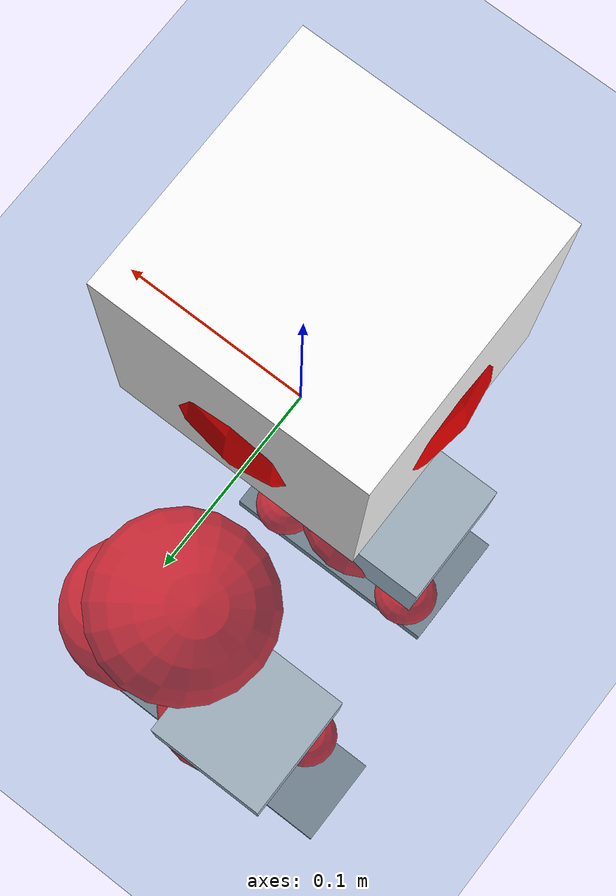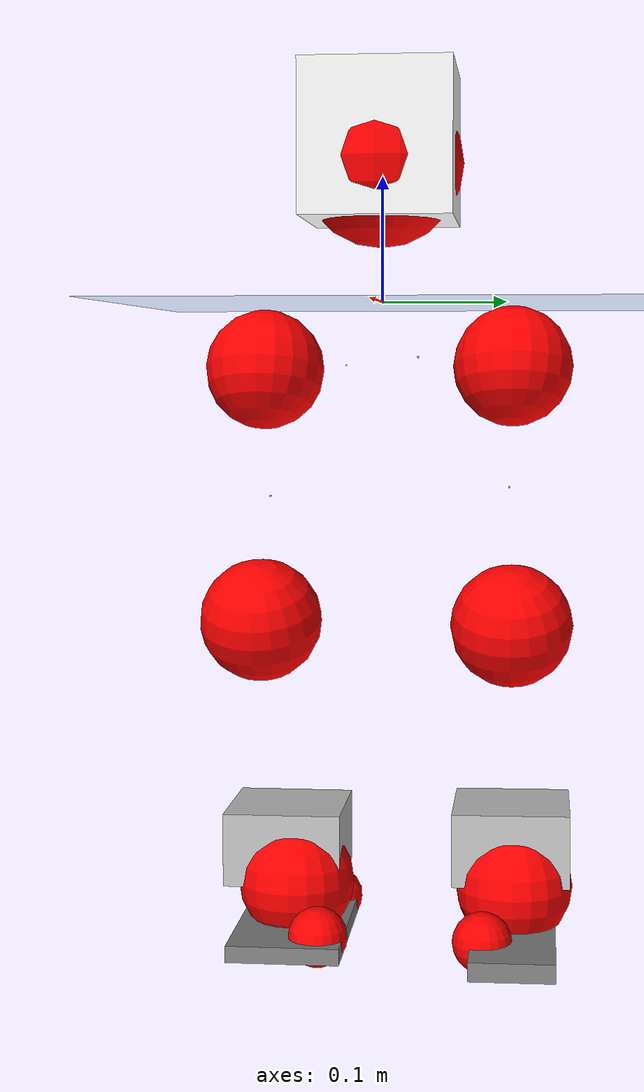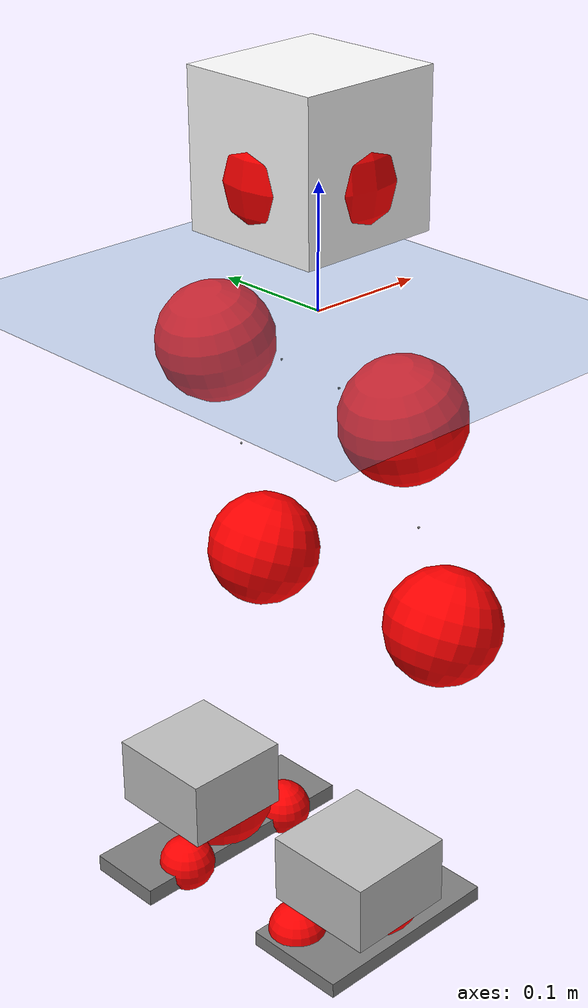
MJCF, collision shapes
<mujoco model="pi_12dof_release_v1">
  <compiler angle="radian" assetdir="assets" balanceinertia="true" inertiafromgeom="false"/>

  <option timestep="0.005" density="1.2" viscosity="2e-05"/>

  <size nkey="1"/>

  <visual>
    <quality shadowsize="8192"/>
    <map shadowclip="0.5"/>
  </visual>

  <default>
    <default class="/">
      <joint armature="0.01" damping="0.01" frictionloss="0.01"/>
      <geom contype="0" conaffinity="0" group="1" solref="-1000 -80"/>
      <site size="0.01 0.005 0.005" group="5"/>
      <general forcelimited="true" biastype="affine" gainprm="20" biasprm="0 -20 -0.5"/>
      <default class="foot">
        <geom size="0.0845 0.036 0.005" type="box" condim="6" group="4" priority="1" friction="0.9 0.2 0.2" solimp="0.015 1 0.005"/>
      </default>
      <default class="reward_collision_sphere">
        <geom group="5" rgba="1 0 0 1"/>
      </default>
    </default>
  </default>

  <asset>
    <texture type="skybox" colorspace="auto" name="//unnamed_texture_0" builtin="gradient" rgb1="0.95 0.95 0.95" rgb2="0.95 0.95 0.95" width="100" height="600"/>
    <texture type="2d" colorspace="auto" name="texplane" builtin="checker" rgb1="0.345 0.575 0.748" rgb2="0.345 0.575 0.748" markrgb="1 1 1" width="512" height="512"/>
    <material name="MatPlane" class="/" texture="texplane" texuniform="true" texrepeat="2 2" specular="0.9"/>
    <mesh name="baselink_1" class="/" file="baselink_1.STL"/>
    <mesh name="r_hip_pitch_link" class="/" file="r_hip_pitch_link.STL"/>
    <mesh name="r_hip_roll_link" class="/" file="r_hip_roll_link.STL"/>
    <mesh name="r_thigh_link" class="/" file="r_thigh_link.STL"/>
    <mesh name="r_calf_link" class="/" file="r_calf_link.STL"/>
    <mesh name="r_ankle_pitch_link" class="/" file="r_ankle_pitch_link.STL"/>
    <mesh name="r_ankle_roll_link" class="/" file="r_ankle_roll_link.STL"/>
    <mesh name="l_hip_pitch_link" class="/" file="l_hip_pitch_link.STL"/>
    <mesh name="l_hip_roll_link" class="/" file="l_hip_roll_link.STL"/>
    <mesh name="l_thigh_link" class="/" file="l_thigh_link.STL"/>
    <mesh name="l_calf_link" class="/" file="l_calf_link.STL"/>
    <mesh name="l_ankle_pitch_link" class="/" file="l_ankle_pitch_link.STL"/>
    <mesh name="l_ankle_roll_link" class="/" file="l_ankle_roll_link.STL"/>
  </asset>

  <worldbody>
    <geom name="floor" class="/" size="100 100 0.125" type="plane" group="0" material="MatPlane"/>
    <light name="toplight_shadow" class="/" pos="0 0 5" dir="0.0990148 0.0990148 -0.990148" type="directional" ambient="0.04 0.04 0.04" diffuse="0.55 0.55 0.55" specular="0.12 0.12 0.12"/>
    <light name="toplight_fill" class="/" pos="0 0 5" dir="0.0990148 0.0990148 -0.990148" type="directional" castshadow="false" ambient="0.04 0.04 0.04" diffuse="0.3 0.3 0.3" specular="0.08 0.08 0.08"/>
    <body name="trunk" pos="-0.00968558 -0.00203978 0.00229353" quat="0.999991 -9.45471e-05 -0.0038886 0.00138711">
      <inertial pos="0.0110642 -0.00226205 0.0613939" quat="0.694799 0.00422928 0.0125177 0.719083" mass="4.27869" diaginertia="0.00432086 0.0257323 0.0367463"/>
      <joint name="//unnamed_joint_0" type="free"/>
      <geom name="//unnamed_geom_1" class="/" type="mesh" density="0" rgba="1 1 1 1" mesh="baselink_1"/>
      <geom name="//unnamed_geom_2" class="/" size="0.0607779 0.0607779 0.0607779" pos="0 0 0.124458" type="box" rgba="1 1 1 1"/>
      <geom name="//unnamed_geom_3" class="reward_collision_sphere" size="0.0668557" pos="0 0 0.1089"/>
      <site name="imu" class="/" pos="-0.0101362 -0.0157368 -0.0391203" size="0.0121556"/>
      <camera name="track" class="/" pos="0 -2.47504 0" quat="0.707107 0.707107 0 0" mode="trackcom"/>
      <camera name="ego_camera" class="/" pos="0.0640077 0 0.28003" quat="-0.5 -0.5 0.5 0.5"/>
      <body name="r_hip_pitch_link" pos="0.00127841 -0.0284512 -0.0526607" quat="0.992287 -0.00061392 -0.123962 -0.000571349">
        <inertial pos="0.00176286 -0.0631694 -0.00129558" quat="-0.0254441 0.701202 -0.0319892 0.71179" mass="0.690602" diaginertia="4.35832e-05 0.000277385 0.000754856"/>
        <joint name="r_hip_pitch_joint" class="/" pos="0 0 0" axis="-0.00253732 -0.999926 0.0118663" range="-1.69647 1.27677" armature="0.0124608" damping="0" frictionloss="0.00884442"/>
        <geom name="//unnamed_geom_4" class="/" type="mesh" density="0" rgba="0.75294 0.75294 0.75294 1" mesh="r_hip_pitch_link"/>
        <geom name="//unnamed_geom_5" class="/" size="0.000607779 0.000607779 0.000607779" type="box" rgba="0.75294 0.75294 0.75294 1"/>
        <body name="r_hip_roll_link" pos="-0.0023432 -0.0672385 -0.00319224" quat="0.999994 0.00044026 -0.00295993 0.00181007">
          <inertial pos="-0.00652933 0.00456616 -0.0866073" quat="0.70528 -0.0788198 -0.0824159 0.699696" mass="0.725424" diaginertia="0.000156284 0.000882953 0.00109078"/>
          <joint name="r_hip_roll_joint" class="/" pos="0 0 0" axis="-0.99963 -0.0255063 -0.00950138" stiffness="0.0144837" range="-0.121358 0.600929" armature="0.0129069" damping="0.0449853" frictionloss="0.00810755"/>
          <geom name="//unnamed_geom_6" class="/" type="mesh" density="0" rgba="0.75294 0.75294 0.75294 1" mesh="r_hip_roll_link"/>
          <geom name="//unnamed_geom_7" class="/" size="0.000607779 0.000607779 0.000607779" type="box" rgba="0.75294 0.75294 0.75294 1"/>
          <geom name="//unnamed_geom_8" class="reward_collision_sphere" size="0.0486223"/>
          <body name="r_thigh_link" pos="0.00217285 0.00828812 -0.105781" quat="0.999998 -0.00158003 0.000244372 0.00124759">
            <inertial pos="0.00651688 0.000484953 -0.0785765" quat="0.734069 0.679061 -0.00441171 -9.9187e-05" mass="0.198745" diaginertia="5.17445e-05 0.000227484 0.000460604"/>
            <joint name="r_thigh_joint" class="/" pos="0 0 0" axis="0.00282652 -0.00480938 -0.999984" stiffness="0.0169608" range="-0.17879 0.518385" armature="0.014131" damping="0.00887234" frictionloss="0.0180889"/>
            <geom name="//unnamed_geom_9" class="/" type="mesh" density="0" rgba="0.75294 0.75294 0.75294 1" mesh="r_thigh_link"/>
            <geom name="//unnamed_geom_10" class="/" size="0.000607779 0.000607779 0.000607779" type="box" rgba="0.75294 0.75294 0.75294 1"/>
            <body name="r_calf_link" pos="0.0022114 -0.00312701 -0.100817" quat="0.948359 0.00173721 0.317194 -0.000772094">
              <inertial pos="-0.00321644 0.00600822 -0.109903" quat="0.999322 -0.0362772 -0.00449827 0.00438541" mass="1.48458" diaginertia="0.00177663 0.0105562 0.0017464"/>
              <joint name="r_calf_joint" class="/" pos="0 0 0" axis="-0.012079 -0.999359 0.0337046" stiffness="0.0345389" range="-1.8339 0.612693" armature="0.0114182" damping="0.0131206" frictionloss="0.00869405"/>
              <geom name="//unnamed_geom_11" class="/" type="mesh" density="0" rgba="0.75294 0.75294 0.75294 1" mesh="r_calf_link"/>
              <geom name="//unnamed_geom_12" class="/" size="0.000607779 0.000607779 0.000607779" type="box" rgba="0.75294 0.75294 0.75294 1"/>
              <geom name="//unnamed_geom_13" class="reward_collision_sphere" size="0.0486223"/>
              <body name="r_ankle_pitch_link" pos="-0.00107797 0.00971255 -0.216344" quat="0.979953 0.000723415 -0.199229 -0.000389221">
                <inertial pos="0.000699144 0.0100352 -0.00216216" quat="-0.0134713 0.709784 0.0125631 0.704178" mass="0.309189" diaginertia="0.000139946 0.000667389 0.00103127"/>
                <joint name="r_ankle_pitch_joint" class="/" pos="0 0 0" axis="-0.0151808 -0.999113 0.0392751" range="-1.33989 0.50496" armature="0.0132797" damping="0.0304985" frictionloss="0.0100826"/>
                <geom name="//unnamed_geom_14" class="/" type="mesh" density="0" rgba="0.75294 0.75294 0.75294 1" mesh="r_ankle_pitch_link"/>
                <geom name="//unnamed_geom_15" class="/" size="0.0474068 0.0486223 0.030389" type="box" rgba="0.75294 0.75294 0.75294 1"/>
                <body name="r_ankle_roll_link" pos="0.0655098 0.00992883 0.00142646" quat="1 -7.34493e-05 0.000328761 -0.000342268">
                  <inertial pos="-0.0209575 0.00248278 -0.0216337" quat="0.583832 0.407638 0.416384 0.565327" mass="0.902958" diaginertia="0.000512859 0.00296577 0.00273185"/>
                  <joint name="r_ankle_roll_joint" class="/" pos="0 0 0" axis="-0.998982 0.044837 0.00501045" range="0.011077 0.198109" armature="0.00744597" damping="0" frictionloss="0.0116443"/>
                  <geom name="//unnamed_geom_16" class="/" type="mesh" density="0" rgba="0.75294 0.75294 0.75294 1" mesh="r_ankle_roll_link"/>
                  <geom name="//unnamed_geom_17" class="/" type="mesh" rgba="0.75294 0.75294 0.75294 1" mesh="r_ankle_roll_link"/>
                  <geom name="right_foot" class="foot" size="0.0871899 0.0455557 0.00675748" pos="-0.0435252 0 -0.0684517"/>
                  <geom name="//unnamed_geom_19" class="reward_collision_sphere" size="0.0486223" pos="-0.0426718 0 -0.0311144"/>
                  <geom name="//unnamed_geom_20" class="reward_collision_sphere" size="0.0243112" pos="0.0128015 0.0247504 -0.0622288"/>
                  <geom name="//unnamed_geom_21" class="reward_collision_sphere" size="0.0243112" pos="-0.102412 0.0247504 -0.0622288"/>
                  <site name="right_foot" class="foot" pos="-0.0435252 0 -0.0684517" size="0.0121556"/>
                </body>
              </body>
            </body>
          </body>
        </body>
      </body>
      <body name="l_hip_pitch_link" pos="-0.00225067 0.0297998 -0.045919" quat="0.992156 0.000672961 -0.125 -0.000740239">
        <inertial pos="-0.000420804 0.0585398 0.00505575" quat="-0.0362681 0.694835 0.0780241 0.714003" mass="0.632458" diaginertia="6.02462e-05 0.000302137 0.000836326"/>
        <joint name="l_hip_pitch_joint" class="/" pos="0 0 0" axis="0.0433556 0.998863 -0.0198096" stiffness="0.00361091" range="-1.26139 1.75068" armature="0.0124874" damping="0" frictionloss="0.0120429"/>
        <geom name="//unnamed_geom_22" class="/" type="mesh" density="0" rgba="0.75294 0.75294 0.75294 1" mesh="l_hip_pitch_link"/>
        <geom name="//unnamed_geom_23" class="/" size="0.000607779 0.000607779 0.000607779" type="box" rgba="0.75294 0.75294 0.75294 1"/>
        <body name="l_hip_roll_link" pos="-0.000592268 0.0774479 -0.00763605" quat="1 0.000172171 0.000819184 -0.000291315">
          <inertial pos="-0.0010715 0.000861531 -0.093195" quat="0.701738 -0.0764067 -0.0798179 0.703814" mass="0.622024" diaginertia="0.000154846 0.000821818 0.00110888"/>
          <joint name="l_hip_roll_joint" class="/" pos="0 0 0" axis="-0.999996 0.00273561 -0.000334113" stiffness="0.0491579" range="-0.537609 -0.00626183" armature="0.0131683" damping="0" frictionloss="0.0126236"/>
          <geom name="//unnamed_geom_24" class="/" type="mesh" density="0" rgba="0.75294 0.75294 0.75294 1" mesh="l_hip_roll_link"/>
          <geom name="//unnamed_geom_25" class="/" size="0.000607779 0.000607779 0.000607779" type="box" rgba="0.75294 0.75294 0.75294 1"/>
          <geom name="//unnamed_geom_26" class="reward_collision_sphere" size="0.0486223"/>
          <body name="l_thigh_link" pos="-0.00155703 -0.00212606 -0.0994453" quat="1 0.000103024 0.000261687 0.000310553">
            <inertial pos="0.000926077 -0.0106861 -0.0731151" quat="0.678961 0.734044 0.00630002 0.0123215" mass="0.200145" diaginertia="5.83725e-05 0.000279559 0.000585491"/>
            <joint name="l_thigh_joint" class="/" pos="0 0 0" axis="0.00353546 0.00103746 -0.999993" range="-0.567384 0.198286" armature="0.010601" damping="0.0406334" frictionloss="0.0103985"/>
            <geom name="//unnamed_geom_27" class="/" type="mesh" density="0" rgba="0.75294 0.75294 0.75294 1" mesh="l_thigh_link"/>
            <geom name="//unnamed_geom_28" class="/" size="0.000607779 0.000607779 0.000607779" type="box" rgba="0.75294 0.75294 0.75294 1"/>
            <body name="l_calf_link" pos="-0.00175657 0.00263575 -0.111279" quat="0.948699 0.00267733 0.316167 0.000901572">
              <inertial pos="-0.00881644 -0.00078501 -0.0995385" quat="0.999561 0.00422795 -0.000655224 0.0293327" mass="1.44744" diaginertia="0.00156239 0.00990433 0.00154712"/>
              <joint name="l_calf_joint" class="/" pos="0 0 0" axis="-0.00693749 0.999886 0.0134032" range="-0.684329 1.72397" armature="0.0121148" damping="0.0152227" frictionloss="0.0163534"/>
              <geom name="//unnamed_geom_29" class="/" type="mesh" density="0" rgba="0.75294 0.75294 0.75294 1" mesh="l_calf_link"/>
              <geom name="//unnamed_geom_30" class="/" size="0.000607779 0.000607779 0.000607779" type="box" rgba="0.75294 0.75294 0.75294 1"/>
              <geom name="//unnamed_geom_31" class="reward_collision_sphere" size="0.0486223"/>
              <body name="l_ankle_pitch_link" pos="0.00073365 -0.00141142 -0.208732" quat="0.98007 -6.28032e-05 -0.198653 -0.000116911">
                <inertial pos="0.00206767 -0.0007186 0.000589626" quat="0.00323759 0.707396 0.00188687 0.706807" mass="0.342324" diaginertia="0.000136266 0.00060602 0.00108882"/>
                <joint name="l_ankle_pitch_joint" class="/" pos="0 0 0" axis="-0.000150206 0.999929 0.011921" stiffness="0.0159103" range="-0.506627 1.35434" armature="0.0125877" damping="0.00390244" frictionloss="0.010991"/>
                <geom name="//unnamed_geom_32" class="/" type="mesh" density="0" rgba="0.75294 0.75294 0.75294 1" mesh="l_ankle_pitch_link"/>
                <geom name="//unnamed_geom_33" class="/" size="0.0474068 0.0486223 0.030389" type="box" rgba="0.75294 0.75294 0.75294 1"/>
                <body name="l_ankle_roll_link" pos="0.0646925 0.00237054 -0.00355834" quat="0.999999 -0.0012709 -5.53503e-05 -0.000259822">
                  <inertial pos="-0.0152108 0.00130142 -0.0245618" quat="0.56894 0.435956 0.431411 0.547845" mass="0.910164" diaginertia="0.00050645 0.00306257 0.00237869"/>
                  <joint name="l_ankle_roll_joint" class="/" pos="0 0 0" axis="-0.999042 0.043252 -0.00659012" stiffness="0.0347166" range="-0.157785 0.111494" armature="0.0124856" damping="0" frictionloss="0.0130244"/>
                  <geom name="//unnamed_geom_34" class="/" type="mesh" density="0" rgba="0.75294 0.75294 0.75294 1" mesh="l_ankle_roll_link"/>
                  <geom name="//unnamed_geom_35" class="/" type="mesh" rgba="0.75294 0.75294 0.75294 1" mesh="l_ankle_roll_link"/>
                  <geom name="left_foot" class="foot" size="0.109519 0.0343589 0.00764928" pos="-0.0435252 0 -0.0684517"/>
                  <geom name="//unnamed_geom_37" class="reward_collision_sphere" size="0.0486223" pos="-0.0426718 0 -0.0311144"/>
                  <geom name="//unnamed_geom_38" class="reward_collision_sphere" size="0.0243112" pos="0.0128015 -0.0247504 -0.0622288"/>
                  <geom name="//unnamed_geom_39" class="reward_collision_sphere" size="0.0243112" pos="-0.102412 -0.0247504 -0.0622288"/>
                  <site name="left_foot" class="foot" pos="-0.0435252 0 -0.0684517" size="0.0121556"/>
                </body>
              </body>
            </body>
          </body>
        </body>
      </body>
    </body>
  </worldbody>

  <contact>
    <pair class="/" geom1="floor" geom2="right_foot" name="//unnamed_contact_1"/>
    <pair class="/" geom1="floor" geom2="left_foot" name="//unnamed_contact_0"/>
  </contact>

  <actuator>
    <general name="r_hip_pitch_joint" class="/" joint="r_hip_pitch_joint" forcerange="-24.2586 24.2586" gainprm="25.6098" biasprm="0 -25.6098 -0.587292"/>
    <general name="r_hip_roll_joint" class="/" joint="r_hip_roll_joint" forcerange="-21.8816 21.8816" gainprm="25.6098" biasprm="0 -25.6098 -0.587292"/>
    <general name="r_thigh_joint" class="/" joint="r_thigh_joint" forcerange="-24.3141 24.3141" gainprm="25.6098" biasprm="0 -25.6098 -0.587292"/>
    <general name="r_calf_joint" class="/" joint="r_calf_joint" forcerange="-16.5106 16.5106" gainprm="25.6098" biasprm="0 -25.6098 -0.587292"/>
    <general name="r_ankle_pitch_joint" class="/" joint="r_ankle_pitch_joint" forcerange="-26.5592 26.5592" gainprm="25.6098" biasprm="0 -25.6098 -0.587292"/>
    <general name="r_ankle_roll_joint" class="/" joint="r_ankle_roll_joint" forcerange="-33.0203 33.0203" gainprm="25.6098" biasprm="0 -25.6098 -0.587292"/>
    <general name="l_hip_pitch_joint" class="/" joint="l_hip_pitch_joint" forcerange="-26.2654 26.2654" gainprm="25.6098" biasprm="0 -25.6098 -0.587292"/>
    <general name="l_hip_roll_joint" class="/" joint="l_hip_roll_joint" forcerange="-28.3882 28.3882" gainprm="25.6098" biasprm="0 -25.6098 -0.587292"/>
    <general name="l_thigh_joint" class="/" joint="l_thigh_joint" forcerange="-23.8316 23.8316" gainprm="25.6098" biasprm="0 -25.6098 -0.587292"/>
    <general name="l_calf_joint" class="/" joint="l_calf_joint" forcerange="-23.8742 23.8742" gainprm="25.6098" biasprm="0 -25.6098 -0.587292"/>
    <general name="l_ankle_pitch_joint" class="/" joint="l_ankle_pitch_joint" forcerange="-22.7649 22.7649" gainprm="25.6098" biasprm="0 -25.6098 -0.587292"/>
    <general name="l_ankle_roll_joint" class="/" joint="l_ankle_roll_joint" forcerange="-24.4489 24.4489" gainprm="25.6098" biasprm="0 -25.6098 -0.587292"/>
  </actuator>

  <sensor>
    <gyro site="imu" name="imu_angular_velocity"/>
    <velocimeter site="imu" name="imu_linear_velocity"/>
    <framelinvel objtype="site" objname="left_foot" name="left_foot_global_linear_velocity"/>
    <framelinvel objtype="site" objname="right_foot" name="right_foot_global_linear_velocity"/>
  </sensor>

  <keyframe>
    <key name="home" qpos="0 0 0.291 1 0 0 0 0.4 0 0 -0.8 0.4 0 -0.4 0 0 0.8 -0.4 0"/>
  </keyframe>
</mujoco>
